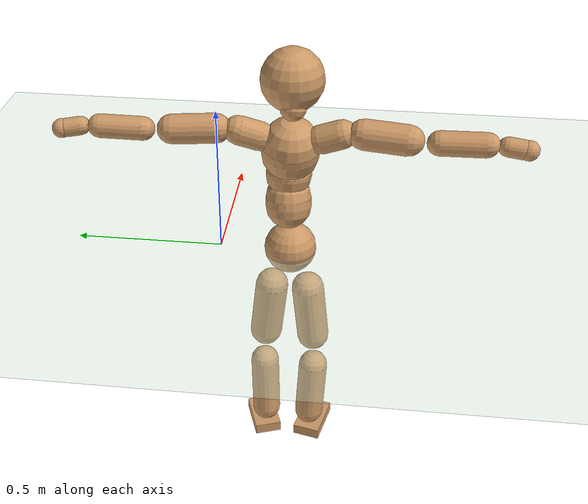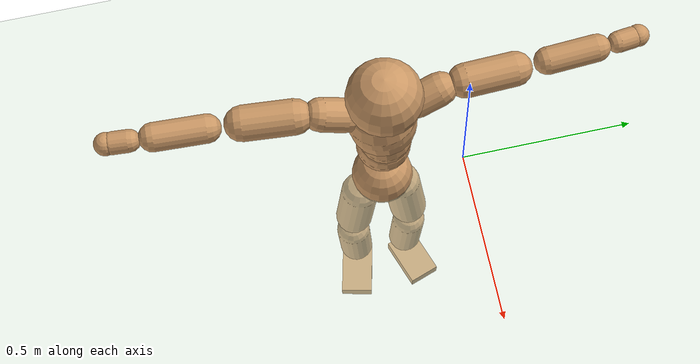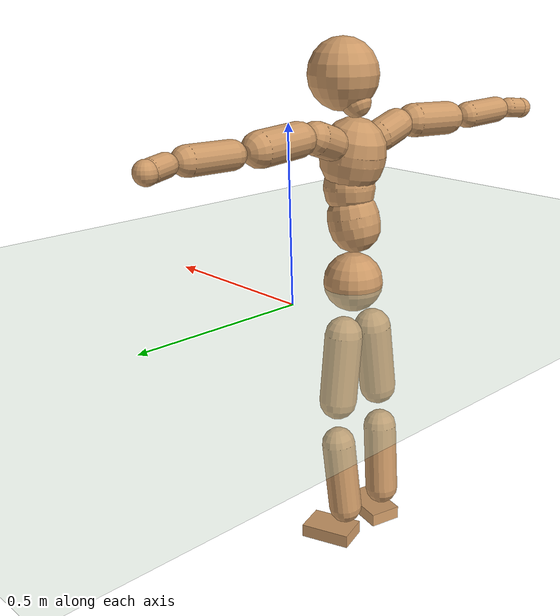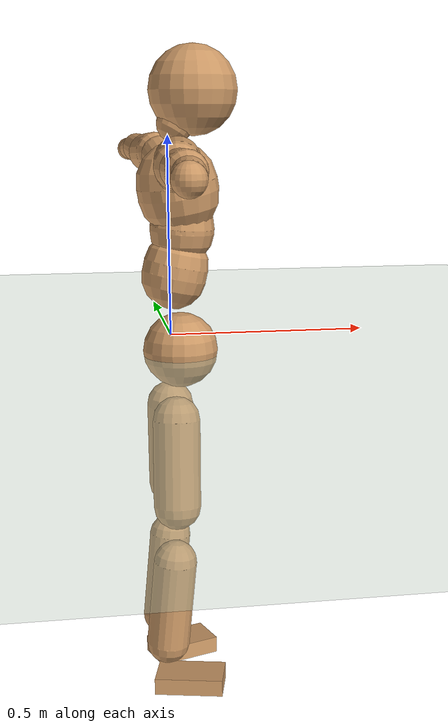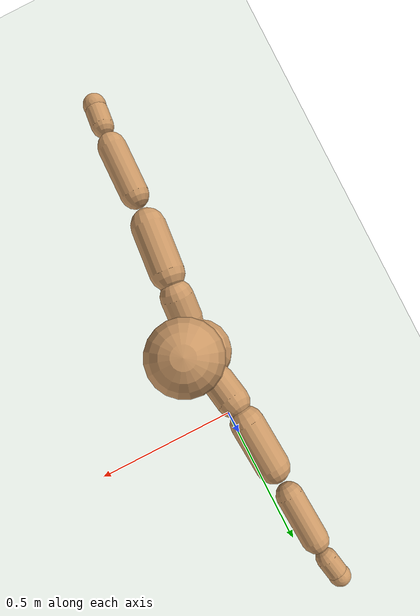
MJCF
<mujoco model="humanoid">
  <compiler coordinate="local" angle="radian"/>
  <default>
    <joint damping="0.0" armature="0.01" stiffness="0.0" limited="true"/>
    <geom conaffinity="1" condim="3" contype="7" margin="0.001" rgba="0.8 0.6 .4 1"/>
  </default>
  <asset>
    <texture type="skybox" builtin="gradient" rgb1=".4 .5 .6" rgb2="0 0 0" width="100" height="100"/>
    <texture builtin="flat" height="1278" mark="cross" markrgb="1 1 1" name="texgeom" random="0.01" rgb1="0.8 0.6 0.4" rgb2="0.8 0.6 0.4" type="cube" width="127"/>
    <texture builtin="checker" height="100" name="texplane" rgb1="0 0 0" rgb2="0.8 0.8 0.8" type="2d" width="100"/>
    <material name="MatPlane" reflectance="0.5" shininess="1" specular="1" texrepeat="60 60" texture="texplane"/>
    <material name="geom" texture="texgeom" texuniform="true"/>
  </asset>
  <worldbody>
    <light cutoff="100" diffuse="1 1 1" dir="-0 0 -1.3" directional="true" exponent="1" pos="0 0 1.3" specular=".1 .1 .1"/>
    <geom conaffinity="1" condim="3" name="floor" pos="0 0 0" rgba="0.8 0.9 0.8 1" size="100 100 .2" type="plane" material="MatPlane"/>
    <body name="Pelvis" pos="-0.0005 -0.2396 0.0113">
      <freejoint name="Pelvis"/>
      <geom type="sphere" contype="1" conaffinity="1" density="500" size="0.0882" pos="0.0000 0.0000 0.0000" name="Pelvis"/>
      <body name="L_Hip" pos="-0.0215 0.0536 -0.0785">
        <joint name="L_Hip_x" type="hinge" pos="0 0 0" axis="1 0 0" stiffness="800" damping="80" armature="0.02" range="-180.0000 180.0000"/>
        <joint name="L_Hip_y" type="hinge" pos="0 0 0" axis="0 1 0" stiffness="800" damping="80" armature="0.02" range="-180.0000 180.0000"/>
        <joint name="L_Hip_z" type="hinge" pos="0 0 0" axis="0 0 1" stiffness="800" damping="80" armature="0.02" range="-180.0000 180.0000"/>
        <geom type="capsule" contype="1" conaffinity="1" density="500" fromto="0.0009 0.0073 -0.0687 0.0037 0.0293 -0.2748" size="0.056" name="L_Hip"/>
        <body name="L_Knee" pos="0.0046 0.0367 -0.3436">
          <joint name="L_Knee_x" type="hinge" pos="0 0 0" axis="1 0 0" stiffness="800" damping="80" armature="0.02" range="-180.0000 180.0000"/>
          <joint name="L_Knee_y" type="hinge" pos="0 0 0" axis="0 1 0" stiffness="800" damping="80" armature="0.02" range="-180.0000 180.0000"/>
          <joint name="L_Knee_z" type="hinge" pos="0 0 0" axis="0 0 1" stiffness="800" damping="80" armature="0.02" range="-180.0000 180.0000"/>
          <geom type="capsule" contype="1" conaffinity="1" density="500" fromto="-0.0070 -0.0025 -0.0712 -0.0281 -0.0098 -0.2848" size="0.0506" name="L_Knee"/>
          <body name="L_Ankle" pos="-0.0351 -0.0123 -0.3561">
            <joint name="L_Ankle_x" type="hinge" pos="0 0 0" axis="1 0 0" stiffness="800" damping="80" armature="0.02" range="-180.0000 180.0000"/>
            <joint name="L_Ankle_y" type="hinge" pos="0 0 0" axis="0 1 0" stiffness="800" damping="80" armature="0.02" range="-180.0000 180.0000"/>
            <joint name="L_Ankle_z" type="hinge" pos="0 0 0" axis="0 0 1" stiffness="800" damping="80" armature="0.02" range="-180.0000 180.0000"/>
            <geom type="box" contype="1" conaffinity="1" density="500" pos="0.0544 0.0191 -0.0263" size="0.0771 0.0476 0.0202" quat="0.9858 0.0000 0.0000 0.1681" name="L_Ankle"/>
            <body name="L_Toe" pos="0.1087 0.0382 -0.0526">
              <joint name="L_Toe_x" type="hinge" pos="0 0 0" axis="1 0 0" stiffness="500" damping="50" armature="0.02" range="-180.0000 180.0000"/>
              <joint name="L_Toe_y" type="hinge" pos="0 0 0" axis="0 1 0" stiffness="500" damping="50" armature="0.02" range="-180.0000 180.0000"/>
              <joint name="L_Toe_z" type="hinge" pos="0 0 0" axis="0 0 1" stiffness="500" damping="50" armature="0.02" range="-180.0000 180.0000"/>
              <geom type="box" contype="1" conaffinity="1" density="500" pos="0.0000 0.0000 0.0265" size="0.001 0.0023 0.001" quat="0.9849 0.0000 0.0000 0.1732" name="L_Toe"/>
            </body>
          </body>
        </body>
      </body>
      <body name="R_Hip" pos="-0.0175 -0.0568 -0.0865">
        <joint name="R_Hip_x" type="hinge" pos="0 0 0" axis="1 0 0" stiffness="800" damping="80" armature="0.02" range="-180.0000 180.0000"/>
        <joint name="R_Hip_y" type="hinge" pos="0 0 0" axis="0 1 0" stiffness="800" damping="80" armature="0.02" range="-180.0000 180.0000"/>
        <joint name="R_Hip_z" type="hinge" pos="0 0 0" axis="0 0 1" stiffness="800" damping="80" armature="0.02" range="-180.0000 180.0000"/>
        <geom type="capsule" contype="1" conaffinity="1" density="500" fromto="-0.0011 -0.0074 -0.0678 -0.0043 -0.0298 -0.2714" size="0.0558" name="R_Hip"/>
        <body name="R_Knee" pos="-0.0053 -0.0372 -0.3392">
          <joint name="R_Knee_x" type="hinge" pos="0 0 0" axis="1 0 0" stiffness="800" damping="80" armature="0.02" range="-180.0000 180.0000"/>
          <joint name="R_Knee_y" type="hinge" pos="0 0 0" axis="0 1 0" stiffness="800" damping="80" armature="0.02" range="-180.0000 180.0000"/>
          <joint name="R_Knee_z" type="hinge" pos="0 0 0" axis="0 0 1" stiffness="800" damping="80" armature="0.02" range="-180.0000 180.0000"/>
          <geom type="capsule" contype="1" conaffinity="1" density="500" fromto="-0.0064 0.0032 -0.0701 -0.0256 0.0130 -0.2803" size="0.0513" name="R_Knee"/>
          <body name="R_Ankle" pos="-0.032 0.0162 -0.3503">
            <joint name="R_Ankle_x" type="hinge" pos="0 0 0" axis="1 0 0" stiffness="800" damping="80" armature="0.02" range="-180.0000 180.0000"/>
            <joint name="R_Ankle_y" type="hinge" pos="0 0 0" axis="0 1 0" stiffness="800" damping="80" armature="0.02" range="-180.0000 180.0000"/>
            <joint name="R_Ankle_z" type="hinge" pos="0 0 0" axis="0 0 1" stiffness="800" damping="80" armature="0.02" range="-180.0000 180.0000"/>
            <geom type="box" contype="1" conaffinity="1" density="500" pos="0.0583 -0.0135 -0.0278" size="0.0815 0.0487 0.0201" quat="0.9936 0.0000 0.0000 -0.1134" name="R_Ankle"/>
            <body name="R_Toe" pos="0.1167 -0.027 -0.0555">
              <joint name="R_Toe_x" type="hinge" pos="0 0 0" axis="1 0 0" stiffness="500" damping="50" armature="0.02" range="-180.0000 180.0000"/>
              <joint name="R_Toe_y" type="hinge" pos="0 0 0" axis="0 1 0" stiffness="500" damping="50" armature="0.02" range="-180.0000 180.0000"/>
              <joint name="R_Toe_z" type="hinge" pos="0 0 0" axis="0 0 1" stiffness="500" damping="50" armature="0.02" range="-180.0000 180.0000"/>
              <geom type="box" contype="1" conaffinity="1" density="500" pos="0.0000 0.0000 0.0301" size="0.001 0.0024 0.0011" quat="0.9946 0.0000 0.0000 -0.1036" name="R_Toe"/>
            </body>
          </body>
        </body>
      </body>
      <body name="Torso" pos="-0.0253 0.0039 0.1166">
        <joint name="Torso_x" type="hinge" pos="0 0 0" axis="1 0 0" stiffness="1000" damping="100" armature="0.02" range="-180.0000 180.0000"/>
        <joint name="Torso_y" type="hinge" pos="0 0 0" axis="0 1 0" stiffness="1000" damping="100" armature="0.02" range="-180.0000 180.0000"/>
        <joint name="Torso_z" type="hinge" pos="0 0 0" axis="0 0 1" stiffness="1000" damping="100" armature="0.02" range="-180.0000 180.0000"/>
        <geom type="capsule" contype="1" conaffinity="1" density="500" fromto="0.0190 0.0030 0.0826 0.0127 0.0020 0.0551" size="0.0758" name="Torso"/>
        <body name="Spine" pos="0.0317 0.005 0.1377">
          <joint name="Spine_x" type="hinge" pos="0 0 0" axis="1 0 0" stiffness="1000" damping="100" armature="0.02" range="-180.0000 180.0000"/>
          <joint name="Spine_y" type="hinge" pos="0 0 0" axis="0 1 0" stiffness="1000" damping="100" armature="0.02" range="-180.0000 180.0000"/>
          <joint name="Spine_z" type="hinge" pos="0 0 0" axis="0 0 1" stiffness="1000" damping="100" armature="0.02" range="-180.0000 180.0000"/>
          <geom type="capsule" contype="1" conaffinity="1" density="500" fromto="0.0023 -0.0013 0.0329 0.0015 -0.0009 0.0219" size="0.0749" name="Spine"/>
          <body name="Chest" pos="0.0039 -0.0022 0.0548">
            <joint name="Chest_x" type="hinge" pos="0 0 0" axis="1 0 0" stiffness="1000" damping="100" armature="0.02" range="-180.0000 180.0000"/>
            <joint name="Chest_y" type="hinge" pos="0 0 0" axis="0 1 0" stiffness="1000" damping="100" armature="0.02" range="-180.0000 180.0000"/>
            <joint name="Chest_z" type="hinge" pos="0 0 0" axis="0 0 1" stiffness="1000" damping="100" armature="0.02" range="-180.0000 180.0000"/>
            <geom type="capsule" contype="1" conaffinity="1" density="500" fromto="-0.0136 -0.0055 0.0792 -0.0091 -0.0037 0.0528" size="0.0942" name="Chest"/>
            <body name="Neck" pos="-0.0268 -0.0136 0.1924">
              <joint name="Neck_x" type="hinge" pos="0 0 0" axis="1 0 0" stiffness="500" damping="50" armature="0.02" range="-180.0000 180.0000"/>
              <joint name="Neck_y" type="hinge" pos="0 0 0" axis="0 1 0" stiffness="500" damping="50" armature="0.02" range="-180.0000 180.0000"/>
              <joint name="Neck_z" type="hinge" pos="0 0 0" axis="0 0 1" stiffness="500" damping="50" armature="0.02" range="-180.0000 180.0000"/>
              <geom type="capsule" contype="1" conaffinity="1" density="500" fromto="0.0106 0.0017 0.0185 0.0423 0.0068 0.0739" size="0.043" name="Neck"/>
              <body name="Head" pos="0.0529 0.0085 0.0924">
                <joint name="Head_x" type="hinge" pos="0 0 0" axis="1 0 0" stiffness="500" damping="50" armature="0.02" range="-180.0000 180.0000"/>
                <joint name="Head_y" type="hinge" pos="0 0 0" axis="0 1 0" stiffness="500" damping="50" armature="0.02" range="-180.0000 180.0000"/>
                <joint name="Head_z" type="hinge" pos="0 0 0" axis="0 0 1" stiffness="500" damping="50" armature="0.02" range="-180.0000 180.0000"/>
                <geom type="sphere" contype="1" conaffinity="1" density="500" size="0.1021" pos="0.0000 0.0000 0.0000" name="Head"/>
              </body>
            </body>
            <body name="L_Thorax" pos="-0.0192 0.0663 0.1017">
              <joint name="L_Thorax_x" type="hinge" pos="0 0 0" axis="1 0 0" stiffness="500" damping="50" armature="0.02" range="-180.0000 180.0000"/>
              <joint name="L_Thorax_y" type="hinge" pos="0 0 0" axis="0 1 0" stiffness="500" damping="50" armature="0.02" range="-180.0000 180.0000"/>
              <joint name="L_Thorax_z" type="hinge" pos="0 0 0" axis="0 0 1" stiffness="500" damping="50" armature="0.02" range="-180.0000 180.0000"/>
              <geom type="capsule" contype="1" conaffinity="1" density="500" fromto="-0.0038 0.0230 0.0080 -0.0151 0.0920 0.0321" size="0.0467" name="L_Thorax"/>
              <body name="L_Shoulder" pos="-0.0189 0.115 0.0401">
                <joint name="L_Shoulder_x" type="hinge" pos="0 0 0" axis="1 0 0" stiffness="500" damping="50" armature="0.02" range="-720.0000 720.0000"/>
                <joint name="L_Shoulder_y" type="hinge" pos="0 0 0" axis="0 1 0" stiffness="500" damping="50" armature="0.02" range="-720.0000 720.0000"/>
                <joint name="L_Shoulder_z" type="hinge" pos="0 0 0" axis="0 0 1" stiffness="500" damping="50" armature="0.02" range="-720.0000 720.0000"/>
                <geom type="capsule" contype="1" conaffinity="1" density="500" fromto="-0.0027 0.0461 -0.0023 -0.0108 0.1843 -0.0092" size="0.048" name="L_Shoulder"/>
                <body name="L_Elbow" pos="-0.0135 0.2304 -0.0115">
                  <joint name="L_Elbow_x" type="hinge" pos="0 0 0" axis="1 0 0" stiffness="500" damping="50" armature="0.02" range="-720.0000 720.0000"/>
                  <joint name="L_Elbow_y" type="hinge" pos="0 0 0" axis="0 1 0" stiffness="500" damping="50" armature="0.02" range="-720.0000 720.0000"/>
                  <joint name="L_Elbow_z" type="hinge" pos="0 0 0" axis="0 0 1" stiffness="500" damping="50" armature="0.02" range="-720.0000 720.0000"/>
                  <geom type="capsule" contype="1" conaffinity="1" density="500" fromto="-0.0021 0.0454 0.0016 -0.0085 0.1817 0.0063" size="0.0383" name="L_Elbow"/>
                  <body name="L_Wrist" pos="-0.0106 0.2271 0.0078">
                    <joint name="L_Wrist_x" type="hinge" pos="0 0 0" axis="1 0 0" stiffness="300" damping="30" armature="0.02" range="-180.0000 180.0000"/>
                    <joint name="L_Wrist_y" type="hinge" pos="0 0 0" axis="0 1 0" stiffness="300" damping="30" armature="0.02" range="-180.0000 180.0000"/>
                    <joint name="L_Wrist_z" type="hinge" pos="0 0 0" axis="0 0 1" stiffness="300" damping="30" armature="0.02" range="-180.0000 180.0000"/>
                    <geom type="capsule" contype="1" conaffinity="1" density="500" fromto="-0.0026 0.0149 -0.0018 -0.0105 0.0596 -0.0074" size="0.0299" name="L_Wrist"/>
                    <body name="L_Hand" pos="-0.0132 0.0745 -0.0092">
                      <joint name="L_Hand_x" type="hinge" pos="0 0 0" axis="1 0 0" stiffness="300" damping="30" armature="0.02" range="-180.0000 180.0000"/>
                      <joint name="L_Hand_y" type="hinge" pos="0 0 0" axis="0 1 0" stiffness="300" damping="30" armature="0.02" range="-180.0000 180.0000"/>
                      <joint name="L_Hand_z" type="hinge" pos="0 0 0" axis="0 0 1" stiffness="300" damping="30" armature="0.02" range="-180.0000 180.0000"/>
                      <geom type="sphere" contype="1" conaffinity="1" density="500" size="0.0309" pos="0.0000 0.0000 0.0000" name="L_Hand"/>
                    </body>
                  </body>
                </body>
              </body>
            </body>
            <body name="R_Thorax" pos="-0.0221 -0.0802 0.1021">
              <joint name="R_Thorax_x" type="hinge" pos="0 0 0" axis="1 0 0" stiffness="500" damping="50" armature="0.02" range="-180.0000 180.0000"/>
              <joint name="R_Thorax_y" type="hinge" pos="0 0 0" axis="0 1 0" stiffness="500" damping="50" armature="0.02" range="-180.0000 180.0000"/>
              <joint name="R_Thorax_z" type="hinge" pos="0 0 0" axis="0 0 1" stiffness="500" damping="50" armature="0.02" range="-180.0000 180.0000"/>
              <geom type="capsule" contype="1" conaffinity="1" density="500" fromto="-0.0016 -0.0213 0.0081 -0.0064 -0.0854 0.0323" size="0.0472" name="R_Thorax"/>
              <body name="R_Shoulder" pos="-0.008 -0.1067 0.0404">
                <joint name="R_Shoulder_x" type="hinge" pos="0 0 0" axis="1 0 0" stiffness="500" damping="50" armature="0.02" range="-720.0000 720.0000"/>
                <joint name="R_Shoulder_y" type="hinge" pos="0 0 0" axis="0 1 0" stiffness="500" damping="50" armature="0.02" range="-720.0000 720.0000"/>
                <joint name="R_Shoulder_z" type="hinge" pos="0 0 0" axis="0 0 1" stiffness="500" damping="50" armature="0.02" range="-720.0000 720.0000"/>
                <geom type="capsule" contype="1" conaffinity="1" density="500" fromto="-0.0045 -0.0462 -0.0018 -0.0181 -0.1848 -0.0073" size="0.0493" name="R_Shoulder"/>
                <body name="R_Elbow" pos="-0.0226 -0.2311 -0.0092">
                  <joint name="R_Elbow_x" type="hinge" pos="0 0 0" axis="1 0 0" stiffness="500" damping="50" armature="0.02" range="-720.0000 720.0000"/>
                  <joint name="R_Elbow_y" type="hinge" pos="0 0 0" axis="0 1 0" stiffness="500" damping="50" armature="0.02" range="-720.0000 720.0000"/>
                  <joint name="R_Elbow_z" type="hinge" pos="0 0 0" axis="0 0 1" stiffness="500" damping="50" armature="0.02" range="-720.0000 720.0000"/>
                  <geom type="capsule" contype="1" conaffinity="1" density="500" fromto="-0.0014 -0.0470 0.0014 -0.0057 -0.1881 0.0054" size="0.0398" name="R_Elbow"/>
                  <body name="R_Wrist" pos="-0.0071 -0.2351 0.0068">
                    <joint name="R_Wrist_x" type="hinge" pos="0 0 0" axis="1 0 0" stiffness="300" damping="30" armature="0.02" range="-180.0000 180.0000"/>
                    <joint name="R_Wrist_y" type="hinge" pos="0 0 0" axis="0 1 0" stiffness="300" damping="30" armature="0.02" range="-180.0000 180.0000"/>
                    <joint name="R_Wrist_z" type="hinge" pos="0 0 0" axis="0 0 1" stiffness="300" damping="30" armature="0.02" range="-180.0000 180.0000"/>
                    <geom type="capsule" contype="1" conaffinity="1" density="500" fromto="-0.0017 -0.0156 -0.0015 -0.0069 -0.0623 -0.0060" size="0.0312" name="R_Wrist"/>
                    <body name="R_Hand" pos="-0.0086 -0.0779 -0.0075">
                      <joint name="R_Hand_x" type="hinge" pos="0 0 0" axis="1 0 0" stiffness="300" damping="30" armature="0.02" range="-180.0000 180.0000"/>
                      <joint name="R_Hand_y" type="hinge" pos="0 0 0" axis="0 1 0" stiffness="300" damping="30" armature="0.02" range="-180.0000 180.0000"/>
                      <joint name="R_Hand_z" type="hinge" pos="0 0 0" axis="0 0 1" stiffness="300" damping="30" armature="0.02" range="-180.0000 180.0000"/>
                      <geom type="sphere" contype="1" conaffinity="1" density="500" size="0.0319" pos="0.0000 0.0000 0.0000" name="R_Hand"/>
                    </body>
                  </body>
                </body>
              </body>
            </body>
          </body>
        </body>
      </body>
    </body>
  </worldbody>
  <actuator>
    <motor name="L_Hip_x" joint="L_Hip_x" gear="500"/>
    <motor name="L_Hip_y" joint="L_Hip_y" gear="500"/>
    <motor name="L_Hip_z" joint="L_Hip_z" gear="500"/>
    <motor name="L_Knee_x" joint="L_Knee_x" gear="500"/>
    <motor name="L_Knee_y" joint="L_Knee_y" gear="500"/>
    <motor name="L_Knee_z" joint="L_Knee_z" gear="500"/>
    <motor name="L_Ankle_x" joint="L_Ankle_x" gear="500"/>
    <motor name="L_Ankle_y" joint="L_Ankle_y" gear="500"/>
    <motor name="L_Ankle_z" joint="L_Ankle_z" gear="500"/>
    <motor name="L_Toe_x" joint="L_Toe_x" gear="500"/>
    <motor name="L_Toe_y" joint="L_Toe_y" gear="500"/>
    <motor name="L_Toe_z" joint="L_Toe_z" gear="500"/>
    <motor name="R_Hip_x" joint="R_Hip_x" gear="500"/>
    <motor name="R_Hip_y" joint="R_Hip_y" gear="500"/>
    <motor name="R_Hip_z" joint="R_Hip_z" gear="500"/>
    <motor name="R_Knee_x" joint="R_Knee_x" gear="500"/>
    <motor name="R_Knee_y" joint="R_Knee_y" gear="500"/>
    <motor name="R_Knee_z" joint="R_Knee_z" gear="500"/>
    <motor name="R_Ankle_x" joint="R_Ankle_x" gear="500"/>
    <motor name="R_Ankle_y" joint="R_Ankle_y" gear="500"/>
    <motor name="R_Ankle_z" joint="R_Ankle_z" gear="500"/>
    <motor name="R_Toe_x" joint="R_Toe_x" gear="500"/>
    <motor name="R_Toe_y" joint="R_Toe_y" gear="500"/>
    <motor name="R_Toe_z" joint="R_Toe_z" gear="500"/>
    <motor name="Torso_x" joint="Torso_x" gear="500"/>
    <motor name="Torso_y" joint="Torso_y" gear="500"/>
    <motor name="Torso_z" joint="Torso_z" gear="500"/>
    <motor name="Spine_x" joint="Spine_x" gear="500"/>
    <motor name="Spine_y" joint="Spine_y" gear="500"/>
    <motor name="Spine_z" joint="Spine_z" gear="500"/>
    <motor name="Chest_x" joint="Chest_x" gear="500"/>
    <motor name="Chest_y" joint="Chest_y" gear="500"/>
    <motor name="Chest_z" joint="Chest_z" gear="500"/>
    <motor name="Neck_x" joint="Neck_x" gear="500"/>
    <motor name="Neck_y" joint="Neck_y" gear="500"/>
    <motor name="Neck_z" joint="Neck_z" gear="500"/>
    <motor name="Head_x" joint="Head_x" gear="500"/>
    <motor name="Head_y" joint="Head_y" gear="500"/>
    <motor name="Head_z" joint="Head_z" gear="500"/>
    <motor name="L_Thorax_x" joint="L_Thorax_x" gear="500"/>
    <motor name="L_Thorax_y" joint="L_Thorax_y" gear="500"/>
    <motor name="L_Thorax_z" joint="L_Thorax_z" gear="500"/>
    <motor name="L_Shoulder_x" joint="L_Shoulder_x" gear="500"/>
    <motor name="L_Shoulder_y" joint="L_Shoulder_y" gear="500"/>
    <motor name="L_Shoulder_z" joint="L_Shoulder_z" gear="500"/>
    <motor name="L_Elbow_x" joint="L_Elbow_x" gear="500"/>
    <motor name="L_Elbow_y" joint="L_Elbow_y" gear="500"/>
    <motor name="L_Elbow_z" joint="L_Elbow_z" gear="500"/>
    <motor name="L_Wrist_x" joint="L_Wrist_x" gear="500"/>
    <motor name="L_Wrist_y" joint="L_Wrist_y" gear="500"/>
    <motor name="L_Wrist_z" joint="L_Wrist_z" gear="500"/>
    <motor name="L_Hand_x" joint="L_Hand_x" gear="500"/>
    <motor name="L_Hand_y" joint="L_Hand_y" gear="500"/>
    <motor name="L_Hand_z" joint="L_Hand_z" gear="500"/>
    <motor name="R_Thorax_x" joint="R_Thorax_x" gear="500"/>
    <motor name="R_Thorax_y" joint="R_Thorax_y" gear="500"/>
    <motor name="R_Thorax_z" joint="R_Thorax_z" gear="500"/>
    <motor name="R_Shoulder_x" joint="R_Shoulder_x" gear="500"/>
    <motor name="R_Shoulder_y" joint="R_Shoulder_y" gear="500"/>
    <motor name="R_Shoulder_z" joint="R_Shoulder_z" gear="500"/>
    <motor name="R_Elbow_x" joint="R_Elbow_x" gear="500"/>
    <motor name="R_Elbow_y" joint="R_Elbow_y" gear="500"/>
    <motor name="R_Elbow_z" joint="R_Elbow_z" gear="500"/>
    <motor name="R_Wrist_x" joint="R_Wrist_x" gear="500"/>
    <motor name="R_Wrist_y" joint="R_Wrist_y" gear="500"/>
    <motor name="R_Wrist_z" joint="R_Wrist_z" gear="500"/>
    <motor name="R_Hand_x" joint="R_Hand_x" gear="500"/>
    <motor name="R_Hand_y" joint="R_Hand_y" gear="500"/>
    <motor name="R_Hand_z" joint="R_Hand_z" gear="500"/>
  </actuator>
  <contact>
    <exclude body1="Torso" body2="Chest"/>
    <exclude body1="Head" body2="Chest"/>
    <exclude body1="R_Knee" body2="R_Toe"/>
    <exclude body1="R_Knee" body2="L_Ankle"/>
    <exclude body1="R_Knee" body2="L_Toe"/>
    <exclude body1="L_Knee" body2="L_Toe"/>
    <exclude body1="L_Knee" body2="R_Ankle"/>
    <exclude body1="L_Knee" body2="R_Toe"/>
    <exclude body1="L_Shoulder" body2="Chest"/>
    <exclude body1="R_Shoulder" body2="Chest"/>
  </contact>
  <sensor/>
  <size njmax="700" nconmax="700"/>
</mujoco>
